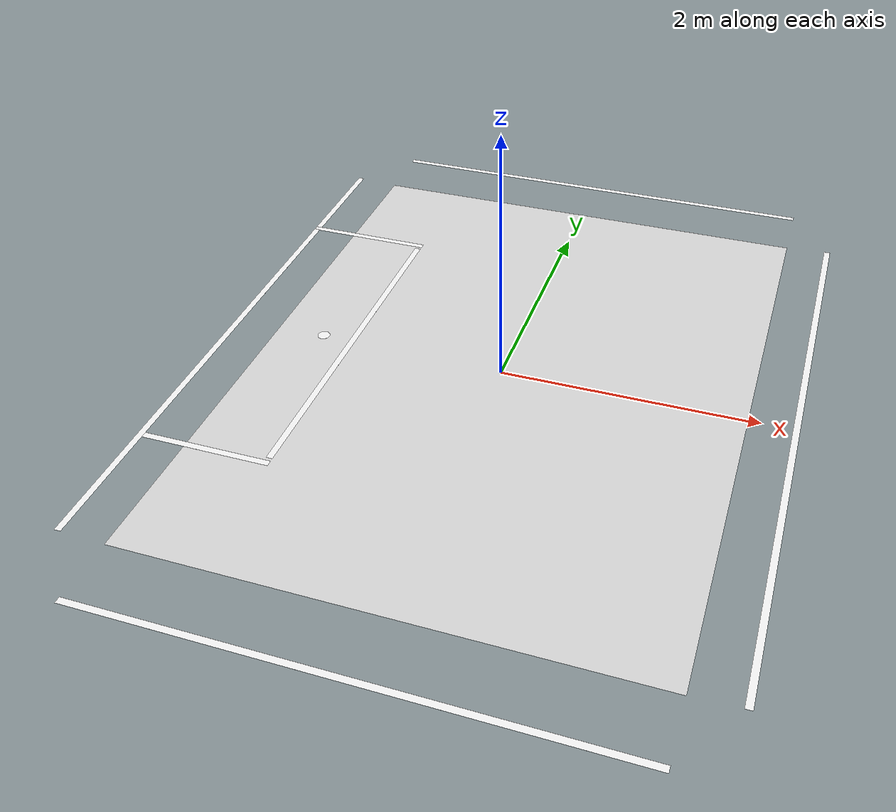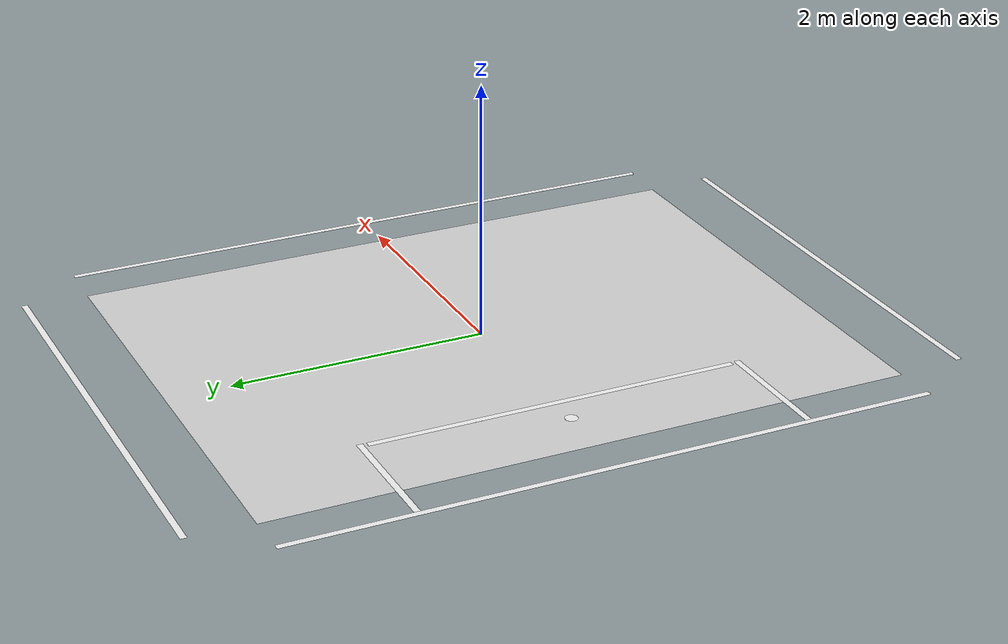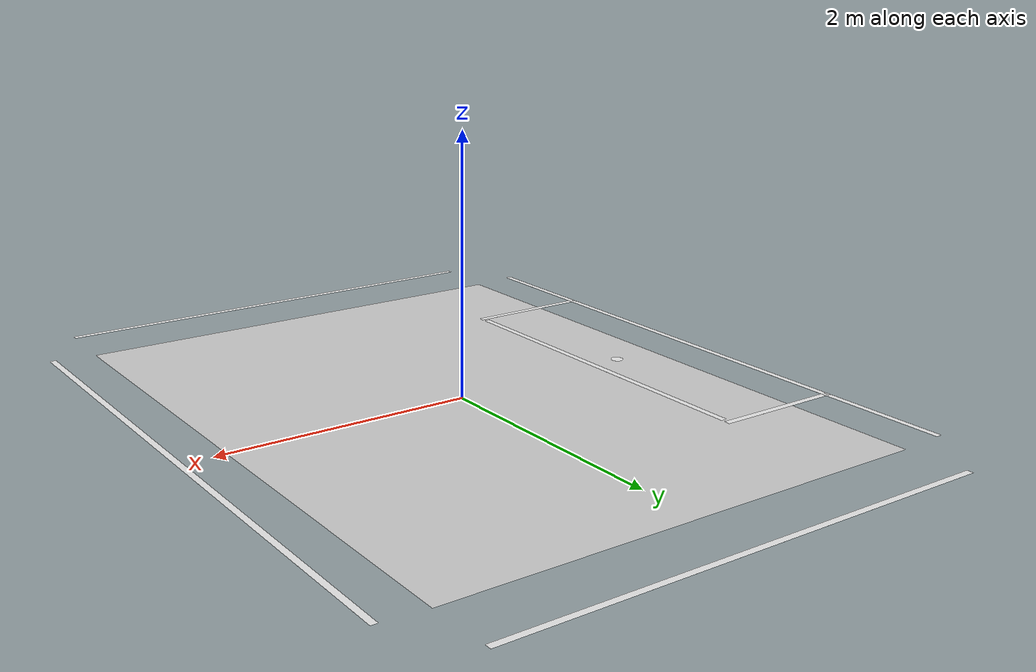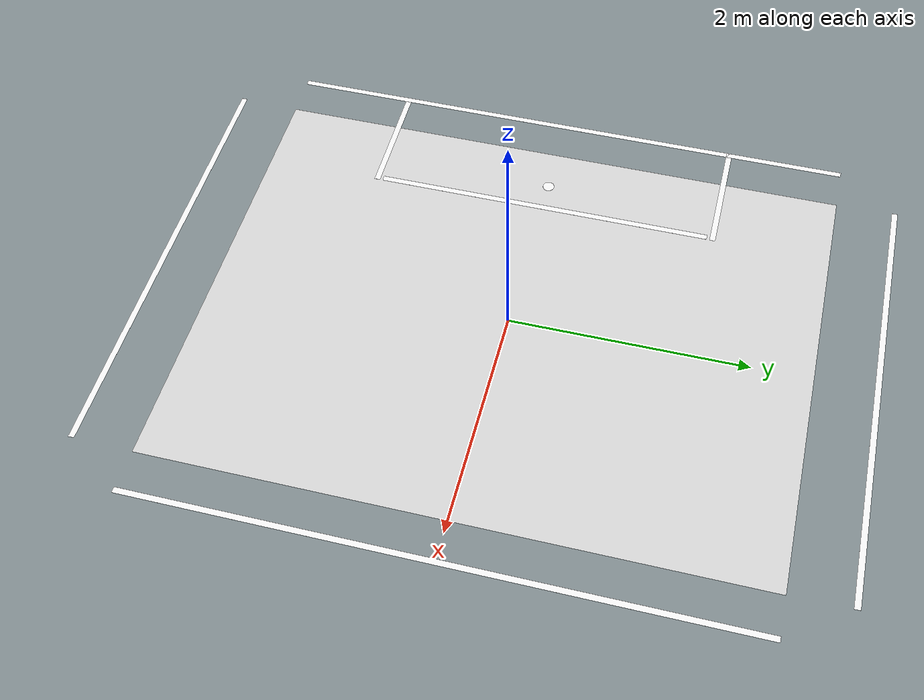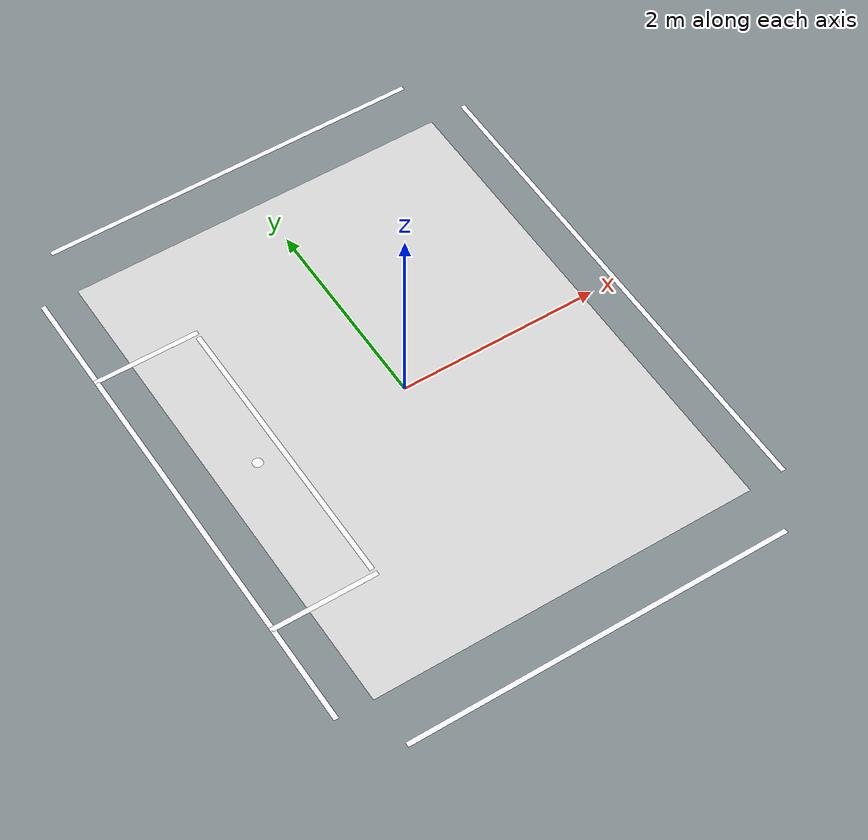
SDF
<?xml version="1.0" ?>
<sdf version="1.4">
  <model name="Robotec Lab Field">
    <static>true</static>

    <link name="field">
      <pose>0 0 0.01 0 0 0</pose>
      <collision name="collision">
        <geometry>
          <plane>
            <normal>0 0 1</normal>
            <size>3.8 5.00</size>
          </plane>
        </geometry>
        <surface>
          <friction>
            <ode>
              <mu>100</mu>
              <mu2>50</mu2>
            </ode>
          </friction>
        </surface>
      </collision>

      <visual name="carpet">
        <cast_shadows>false</cast_shadows>
        <geometry>
          <plane>
            <normal>0 0 1</normal>
            <size>3.8 5.0</size>
          </plane>
        </geometry>
        <material>
          <script>
            <uri>model://robocup09_spl_field/materials/scripts/</uri>
            <uri>model://robocup09_spl_field/materials/textures/</uri>
            <name>RoboCup/Carpet</name>
          </script>
        </material>
      </visual>

      <visual name="sideline_1">
        <pose>0 3 0.011 0 0 0</pose>
        <cast_shadows>false</cast_shadows>
        <geometry>
          <plane>
            <normal>0 0 1</normal>
            <size>3.80 0.05</size>
          </plane>
        </geometry>
        <material>
          <script>
            <uri>file://media/materials/scripts/gazebo.material</uri>
            <name>Gazebo/White</name>
          </script>
        </material>
      </visual>

      <visual name="sideline_2">
        <pose>0 -3 0.011 0 0 0</pose>
        <cast_shadows>false</cast_shadows>
        <geometry>
          <plane>
            <normal>0 0 1</normal>
            <size>3.8 0.05</size>
          </plane>
        </geometry>
        <material>
          <script>
            <uri>file://media/materials/scripts/gazebo.material</uri>
            <name>Gazebo/White</name>
          </script>
        </material>
      </visual>

      <visual name="endline_1">
        <pose>-2.25 0 0.011 0 0 0</pose>
        <cast_shadows>false</cast_shadows>
        <geometry>
          <plane>
            <normal>0 0 1</normal>
            <size>0.05 5.0</size>
          </plane>
        </geometry>
        <material>
          <script>
            <uri>file://media/materials/scripts/gazebo.material</uri>
            <name>Gazebo/White</name>
          </script>
        </material>
      </visual>

      <visual name="endline_2">
        <pose>2.25 0 0.011 0 0 0</pose>
        <cast_shadows>false</cast_shadows>
        <geometry>
          <plane>
            <normal>0 0 1</normal>
            <size>0.05 5.0</size>
          </plane>
        </geometry>
        <material>
          <script>
            <uri>file://media/materials/scripts/gazebo.material</uri>
            <name>Gazebo/White</name>
          </script>
        </material>
      </visual>

      <visual name="area_1_line_a">
        <pose>-1.25 0 0.011 0 0 0</pose>
        <cast_shadows>false</cast_shadows>
        <geometry>
          <plane>
            <normal>0 0 1</normal>
            <size>0.05 2.9</size>
          </plane>
        </geometry>
        <material>
          <script>
            <uri>file://media/materials/scripts/gazebo.material</uri>
            <name>Gazebo/White</name>
          </script>
        </material>
      </visual>

      <visual name="area_2_line_a">
        <pose>-1.75 1.50 0.011 0 0 0</pose>
        <cast_shadows>false</cast_shadows>
        <geometry>
          <plane>
            <normal>0 0 1</normal>
            <size>1.05 0.05</size>
          </plane>
        </geometry>
        <material>
          <script>
            <uri>file://media/materials/scripts/gazebo.material</uri>
            <name>Gazebo/White</name>
          </script>
        </material>
      </visual>

      <visual name="area_3_line_a">
        <pose>-1.75 -1.50 0.011 0 0 0</pose>
        <cast_shadows>false</cast_shadows>
        <geometry>
          <plane>
            <normal>0 0 1</normal>
            <size>1.05 0.05</size>
          </plane>
        </geometry>
        <material>
          <script>
            <uri>file://media/materials/scripts/gazebo.material</uri>
            <name>Gazebo/White</name>
          </script>
        </material>
      </visual>

      <visual name="penalty_a">
        <pose>-1.5 0 0.01 0 0 0</pose>
        <cast_shadows>false</cast_shadows>
        <geometry>
          <cylinder>
            <radius>0.05</radius>
            <length>0.0005</length>
          </cylinder>
        </geometry>
        <material>
          <script>
            <uri>file://media/materials/scripts/gazebo.material</uri>
            <name>Gazebo/White</name>
          </script>
        </material>
      </visual>
    </link>

  </model>
</sdf>
